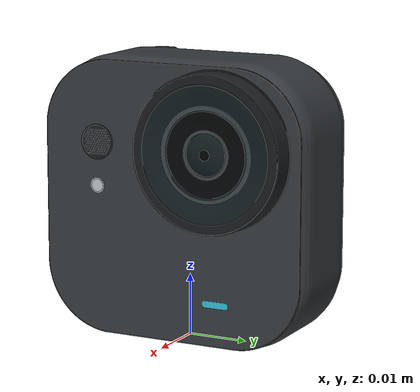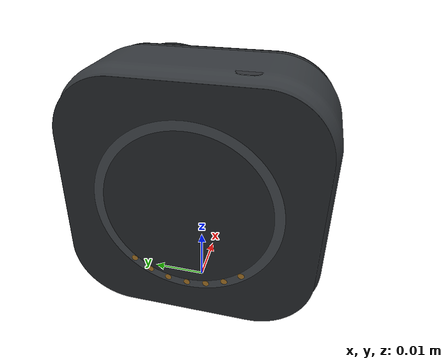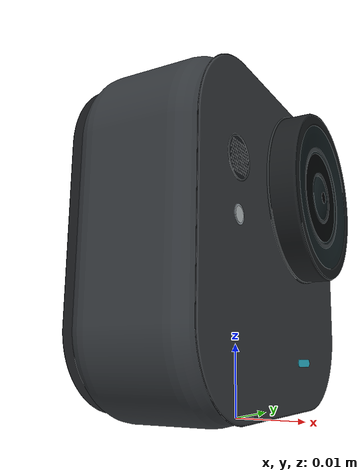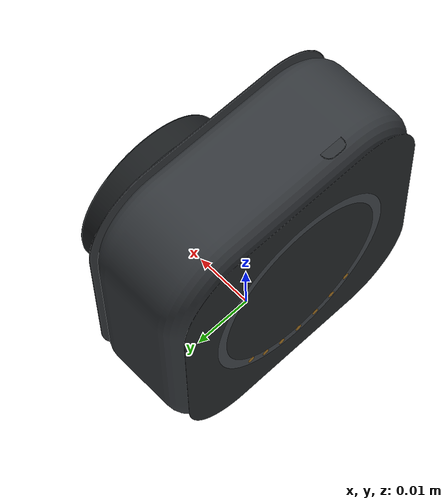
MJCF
<?xml version='1.0' encoding='utf-8'?>
<mujoco model="insta360_go_ultra">
  <!--Independent approximate geometry; fixed sites are geometric references, not calibrated optical frames.-->
  <compiler angle="radian" inertiafromgeom="false" strippath="false" />
  <option timestep="0.002" gravity="0 0 -9.81" />
  <asset>
    <mesh name="go_ultra_visual_mesh_0" file="../assets/meshes/visual/ambient_sensor.obj" scale="1 1 1" inertia="shell" />
    <mesh name="go_ultra_visual_mesh_1" file="../assets/meshes/visual/front_polymer.obj" scale="1 1 1" inertia="shell" />
    <mesh name="go_ultra_visual_mesh_2" file="../assets/meshes/visual/gasket.obj" scale="1 1 1" inertia="shell" />
    <mesh name="go_ultra_visual_mesh_3" file="../assets/meshes/visual/gold.obj" scale="1 1 1" inertia="shell" />
    <mesh name="go_ultra_visual_mesh_4" file="../assets/meshes/visual/housing.obj" scale="1 1 1" inertia="shell" />
    <mesh name="go_ultra_visual_mesh_5" file="../assets/meshes/visual/lens_coating.obj" scale="1 1 1" inertia="shell" />
    <mesh name="go_ultra_visual_mesh_6" file="../assets/meshes/visual/lens_ring.obj" scale="1 1 1" inertia="shell" />
    <mesh name="go_ultra_visual_mesh_7" file="../assets/meshes/visual/optical_glass.obj" scale="1 1 1" inertia="shell" />
    <mesh name="go_ultra_visual_mesh_8" file="../assets/meshes/visual/pupil.obj" scale="1 1 1" inertia="shell" />
    <mesh name="go_ultra_visual_mesh_9" file="../assets/meshes/visual/rear_polymer.obj" scale="1 1 1" inertia="shell" />
    <mesh name="go_ultra_visual_mesh_10" file="../assets/meshes/visual/rib.obj" scale="1 1 1" inertia="shell" />
    <mesh name="go_ultra_visual_mesh_11" file="../assets/meshes/visual/rim_edge.obj" scale="1 1 1" inertia="shell" />
    <mesh name="go_ultra_visual_mesh_12" file="../assets/meshes/visual/silver.obj" scale="1 1 1" inertia="shell" />
    <mesh name="go_ultra_visual_mesh_13" file="../assets/meshes/visual/slot.obj" scale="1 1 1" inertia="shell" />
    <mesh name="go_ultra_visual_mesh_14" file="../assets/meshes/visual/status.obj" scale="1 1 1" inertia="shell" />
    <mesh name="go_ultra_visual_mesh_15" file="../assets/meshes/visual/subtle_print.obj" scale="1 1 1" inertia="shell" />
    <mesh name="go_ultra_collision_mesh_0" file="../assets/meshes/collision/body.stl" scale="1 1 1" inertia="convex" />
    <mesh name="go_ultra_collision_mesh_1" file="../assets/meshes/collision/front_lens.stl" scale="1 1 1" inertia="convex" />
  </asset>
  <worldbody>
    <body name="go_ultra_link">
      <inertial pos="0 0 0.02285" mass="0.0529" diaginertia="1.85347934167e-05 1.14186854167e-05 1.15399586667e-05" quat="1 0 0 0" />
      <geom name="go_ultra_visual_0" type="mesh" mesh="go_ultra_visual_mesh_0" pos="0 0 0" quat="1 0 0 0" density="0" group="2" contype="0" conaffinity="0" rgba="0.79 0.82 0.83 1" />
      <geom name="go_ultra_visual_1" type="mesh" mesh="go_ultra_visual_mesh_1" pos="0 0 0" quat="1 0 0 0" density="0" group="2" contype="0" conaffinity="0" rgba="0.23 0.242 0.255 1" />
      <geom name="go_ultra_visual_2" type="mesh" mesh="go_ultra_visual_mesh_2" pos="0 0 0" quat="1 0 0 0" density="0" group="2" contype="0" conaffinity="0" rgba="0.12 0.135 0.145 1" />
      <geom name="go_ultra_visual_3" type="mesh" mesh="go_ultra_visual_mesh_3" pos="0 0 0" quat="1 0 0 0" density="0" group="2" contype="0" conaffinity="0" rgba="0.72 0.51 0.17 1" />
      <geom name="go_ultra_visual_4" type="mesh" mesh="go_ultra_visual_mesh_4" pos="0 0 0" quat="1 0 0 0" density="0" group="2" contype="0" conaffinity="0" rgba="0.2 0.215 0.23 1" />
      <geom name="go_ultra_visual_5" type="mesh" mesh="go_ultra_visual_mesh_5" pos="0 0 0" quat="1 0 0 0" density="0" group="2" contype="0" conaffinity="0" rgba="0.078 0.123 0.133 1" />
      <geom name="go_ultra_visual_6" type="mesh" mesh="go_ultra_visual_mesh_6" pos="0 0 0" quat="1 0 0 0" density="0" group="2" contype="0" conaffinity="0" rgba="0.105 0.115 0.122 1" />
      <geom name="go_ultra_visual_7" type="mesh" mesh="go_ultra_visual_mesh_7" pos="0 0 0" quat="1 0 0 0" density="0" group="2" contype="0" conaffinity="0" rgba="0.014 0.024 0.028 1" />
      <geom name="go_ultra_visual_8" type="mesh" mesh="go_ultra_visual_mesh_8" pos="0 0 0" quat="1 0 0 0" density="0" group="2" contype="0" conaffinity="0" rgba="0.004 0.007 0.009 1" />
      <geom name="go_ultra_visual_9" type="mesh" mesh="go_ultra_visual_mesh_9" pos="0 0 0" quat="1 0 0 0" density="0" group="2" contype="0" conaffinity="0" rgba="0.175 0.185 0.198 1" />
      <geom name="go_ultra_visual_10" type="mesh" mesh="go_ultra_visual_mesh_10" pos="0 0 0" quat="1 0 0 0" density="0" group="2" contype="0" conaffinity="0" rgba="0.105 0.12 0.13 1" />
      <geom name="go_ultra_visual_11" type="mesh" mesh="go_ultra_visual_mesh_11" pos="0 0 0" quat="1 0 0 0" density="0" group="2" contype="0" conaffinity="0" rgba="0.25 0.278 0.29 1" />
      <geom name="go_ultra_visual_12" type="mesh" mesh="go_ultra_visual_mesh_12" pos="0 0 0" quat="1 0 0 0" density="0" group="2" contype="0" conaffinity="0" rgba="0.67 0.71 0.735 1" />
      <geom name="go_ultra_visual_13" type="mesh" mesh="go_ultra_visual_mesh_13" pos="0 0 0" quat="1 0 0 0" density="0" group="2" contype="0" conaffinity="0" rgba="0.025 0.033 0.039 1" />
      <geom name="go_ultra_visual_14" type="mesh" mesh="go_ultra_visual_mesh_14" pos="0 0 0" quat="1 0 0 0" density="0" group="2" contype="0" conaffinity="0" rgba="0.2 0.79 0.89 1" />
      <geom name="go_ultra_visual_15" type="mesh" mesh="go_ultra_visual_mesh_15" pos="0 0 0" quat="1 0 0 0" density="0" group="2" contype="0" conaffinity="0" rgba="0.3 0.32 0.34 1" />
      <geom name="go_ultra_collision_0" type="mesh" mesh="go_ultra_collision_mesh_0" pos="0 0 0" quat="1 0 0 0" density="0" group="3" contype="1" conaffinity="1" rgba="0 0 0 0" />
      <geom name="go_ultra_collision_1" type="mesh" mesh="go_ultra_collision_mesh_1" pos="0 0 0" quat="1 0 0 0" density="0" group="3" contype="1" conaffinity="1" rgba="0 0 0 0" />
      <site name="go_ultra_mount" pos="0 0 0" quat="1 0 0 0" type="sphere" size="0.001" group="4" rgba="0 0 0 0" />
      <site name="go_ultra_front_lens_surface" pos="0.0112 0.008 0.032" quat="0.500000000002 -0.5 0.499999999998 -0.5" type="sphere" size="0.001" group="4" rgba="0 0 0 0" />
    </body>
  </worldbody>
</mujoco>
